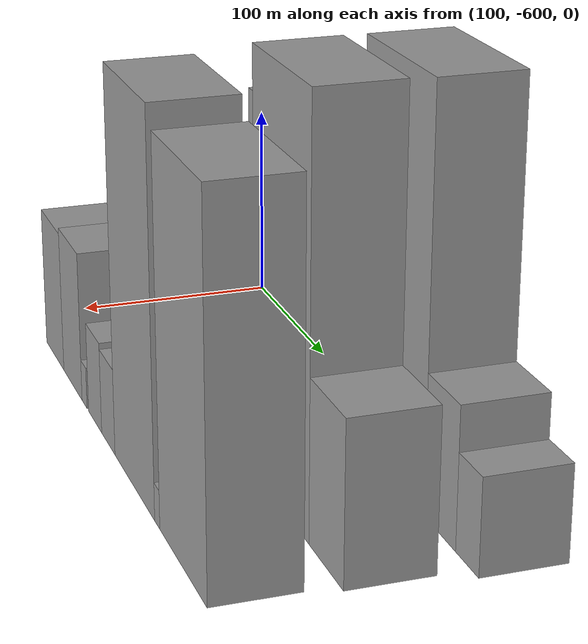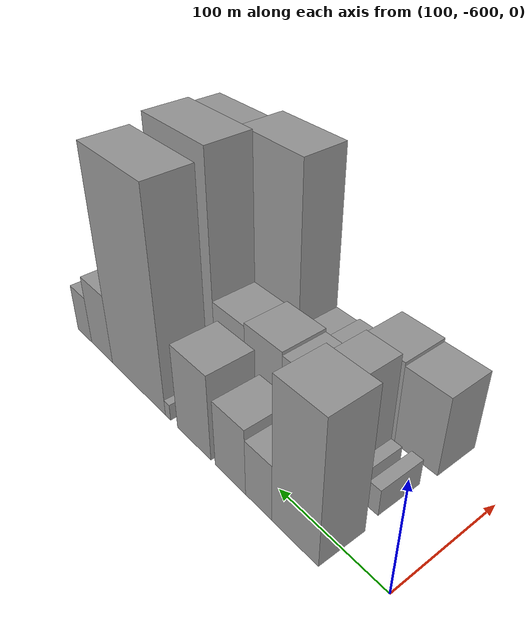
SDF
<sdf version="1.6">
 <world name="default">
  <model name="building_1">
   <static>1</static>
   <pose>100.0000 -538.0653 0 0.000000 0.000000 0.000000</pose>
   <link name="link">
    <pose>0 0 63.00 0 0 0</pose>
    <collision name="collision"><geometry><box><size>40.0000 43.8694 126.0000</size></box></geometry></collision>
    <visual name="visual">
     <cast_shadows>0</cast_shadows>
     <geometry><box><size>40.0000 43.8694 126.0000</size></box></geometry>
     <material>
      <script>
       <uri>model://grey_wall/materials/scripts</uri>
       <uri>model://grey_wall/materials/textures</uri>
       <name>vrc/grey_wall</name>
      </script>
     </material>
    </visual>
   </link>
  </model>
  <model name="building_2">
   <static>1</static>
   <pose>100.0000 -502.6067 0 0.000000 0.000000 0.000000</pose>
   <link name="link">
    <pose>0 0 25.50 0 0 0</pose>
    <collision name="collision"><geometry><box><size>40.0000 27.0477 51.0000</size></box></geometry></collision>
    <visual name="visual">
     <cast_shadows>0</cast_shadows>
     <geometry><box><size>40.0000 27.0477 51.0000</size></box></geometry>
     <material>
      <script>
       <uri>model://grey_wall/materials/scripts</uri>
       <uri>model://grey_wall/materials/textures</uri>
       <name>vrc/grey_wall</name>
      </script>
     </material>
    </visual>
   </link>
  </model>
  <model name="building_3">
   <static>1</static>
   <pose>100.0000 -472.1858 0 0.000000 0.000000 0.000000</pose>
   <link name="link">
    <pose>0 0 30.00 0 0 0</pose>
    <collision name="collision"><geometry><box><size>40.0000 33.7942 60.0000</size></box></geometry></collision>
    <visual name="visual">
     <cast_shadows>0</cast_shadows>
     <geometry><box><size>40.0000 33.7942 60.0000</size></box></geometry>
     <material>
      <script>
       <uri>model://grey_wall/materials/scripts</uri>
       <uri>model://grey_wall/materials/textures</uri>
       <name>vrc/grey_wall</name>
      </script>
     </material>
    </visual>
   </link>
  </model>
  <model name="building_4">
   <static>1</static>
   <pose>100.0000 -429.7920 0 0.000000 0.000000 0.000000</pose>
   <link name="link">
    <pose>0 0 39.00 0 0 0</pose>
    <collision name="collision"><geometry><box><size>40.0000 40.9933 78.0000</size></box></geometry></collision>
    <visual name="visual">
     <cast_shadows>0</cast_shadows>
     <geometry><box><size>40.0000 40.9933 78.0000</size></box></geometry>
     <material>
      <script>
       <uri>model://grey_wall/materials/scripts</uri>
       <uri>model://grey_wall/materials/textures</uri>
       <name>vrc/grey_wall</name>
      </script>
     </material>
    </visual>
   </link>
  </model>
  <model name="building_5">
   <static>1</static>
   <pose>100.0000 -396.8472 0 0.000000 0.000000 0.000000</pose>
   <link name="link">
    <pose>0 0 7.50 0 0 0</pose>
    <collision name="collision"><geometry><box><size>40.0000 6.8963 15.0000</size></box></geometry></collision>
    <visual name="visual">
     <cast_shadows>0</cast_shadows>
     <geometry><box><size>40.0000 6.8963 15.0000</size></box></geometry>
     <material>
      <script>
       <uri>model://grey_wall/materials/scripts</uri>
       <uri>model://grey_wall/materials/textures</uri>
       <name>vrc/grey_wall</name>
      </script>
     </material>
    </visual>
   </link>
  </model>
  <model name="building_6">
   <static>1</static>
   <pose>100.0000 -355.0737 0 0.000000 0.000000 0.000000</pose>
   <link name="link">
    <pose>0 0 96.00 0 0 0</pose>
    <collision name="collision"><geometry><box><size>40.0000 76.6506 192.0000</size></box></geometry></collision>
    <visual name="visual">
     <cast_shadows>0</cast_shadows>
     <geometry><box><size>40.0000 76.6506 192.0000</size></box></geometry>
     <material>
      <script>
       <uri>model://grey_wall/materials/scripts</uri>
       <uri>model://grey_wall/materials/textures</uri>
       <name>vrc/grey_wall</name>
      </script>
     </material>
    </visual>
   </link>
  </model>
  <model name="building_7">
   <static>1</static>
   <pose>100.0000 -299.8368 0 0.000000 0.000000 0.000000</pose>
   <link name="link">
    <pose>0 0 33.00 0 0 0</pose>
    <collision name="collision"><geometry><box><size>40.0000 33.8232 66.0000</size></box></geometry></collision>
    <visual name="visual">
     <cast_shadows>0</cast_shadows>
     <geometry><box><size>40.0000 33.8232 66.0000</size></box></geometry>
     <material>
      <script>
       <uri>model://grey_wall/materials/scripts</uri>
       <uri>model://grey_wall/materials/textures</uri>
       <name>vrc/grey_wall</name>
      </script>
     </material>
    </visual>
   </link>
  </model>
  <model name="building_8">
   <static>1</static>
   <pose>100.0000 -271.1607 0 0.000000 0.000000 0.000000</pose>
   <link name="link">
    <pose>0 0 22.50 0 0 0</pose>
    <collision name="collision"><geometry><box><size>40.0000 23.5292 45.0000</size></box></geometry></collision>
    <visual name="visual">
     <cast_shadows>0</cast_shadows>
     <geometry><box><size>40.0000 23.5292 45.0000</size></box></geometry>
     <material>
      <script>
       <uri>model://grey_wall/materials/scripts</uri>
       <uri>model://grey_wall/materials/textures</uri>
       <name>vrc/grey_wall</name>
      </script>
     </material>
    </visual>
   </link>
  </model>
  <model name="building_35">
   <static>1</static>
   <pose>155.0000 -551.8462 0 0.000000 0.000000 0.000000</pose>
   <link name="link">
    <pose>0 0 12.00 0 0 0</pose>
    <collision name="collision"><geometry><box><size>40.0000 10.3077 24.0000</size></box></geometry></collision>
    <visual name="visual">
     <cast_shadows>0</cast_shadows>
     <geometry><box><size>40.0000 10.3077 24.0000</size></box></geometry>
     <material>
      <script>
       <uri>model://grey_wall/materials/scripts</uri>
       <uri>model://grey_wall/materials/textures</uri>
       <name>vrc/grey_wall</name>
      </script>
     </material>
    </visual>
   </link>
  </model>
  <model name="building_36">
   <static>1</static>
   <pose>155.0000 -533.7360 0 0.000000 0.000000 0.000000</pose>
   <link name="link">
    <pose>0 0 10.50 0 0 0</pose>
    <collision name="collision"><geometry><box><size>40.0000 9.9126 21.0000</size></box></geometry></collision>
    <visual name="visual">
     <cast_shadows>0</cast_shadows>
     <geometry><box><size>40.0000 9.9126 21.0000</size></box></geometry>
     <material>
      <script>
       <uri>model://grey_wall/materials/scripts</uri>
       <uri>model://grey_wall/materials/textures</uri>
       <name>vrc/grey_wall</name>
      </script>
     </material>
    </visual>
   </link>
  </model>
  <model name="building_37">
   <static>1</static>
   <pose>155.0000 -513.0303 0 0.000000 0.000000 0.000000</pose>
   <link name="link">
    <pose>0 0 48.00 0 0 0</pose>
    <collision name="collision"><geometry><box><size>40.0000 31.4988 96.0000</size></box></geometry></collision>
    <visual name="visual">
     <cast_shadows>0</cast_shadows>
     <geometry><box><size>40.0000 31.4988 96.0000</size></box></geometry>
     <material>
      <script>
       <uri>model://grey_wall/materials/scripts</uri>
       <uri>model://grey_wall/materials/textures</uri>
       <name>vrc/grey_wall</name>
      </script>
     </material>
    </visual>
   </link>
  </model>
  <model name="building_38">
   <static>1</static>
   <pose>155.0000 -479.1064 0 0.000000 0.000000 0.000000</pose>
   <link name="link">
    <pose>0 0 36.00 0 0 0</pose>
    <collision name="collision"><geometry><box><size>40.0000 36.3490 72.0000</size></box></geometry></collision>
    <visual name="visual">
     <cast_shadows>0</cast_shadows>
     <geometry><box><size>40.0000 36.3490 72.0000</size></box></geometry>
     <material>
      <script>
       <uri>model://grey_wall/materials/scripts</uri>
       <uri>model://grey_wall/materials/textures</uri>
       <name>vrc/grey_wall</name>
      </script>
     </material>
    </visual>
   </link>
  </model>
  <model name="building_39">
   <static>1</static>
   <pose>155.0000 -440.3385 0 0.000000 0.000000 0.000000</pose>
   <link name="link">
    <pose>0 0 37.50 0 0 0</pose>
    <collision name="collision"><geometry><box><size>40.0000 41.1868 75.0000</size></box></geometry></collision>
    <visual name="visual">
     <cast_shadows>0</cast_shadows>
     <geometry><box><size>40.0000 41.1868 75.0000</size></box></geometry>
     <material>
      <script>
       <uri>model://grey_wall/materials/scripts</uri>
       <uri>model://grey_wall/materials/textures</uri>
       <name>vrc/grey_wall</name>
      </script>
     </material>
    </visual>
   </link>
  </model>
  <model name="building_40">
   <static>1</static>
   <pose>155.0000 -400.9621 0 0.000000 0.000000 0.000000</pose>
   <link name="link">
    <pose>0 0 36.00 0 0 0</pose>
    <collision name="collision"><geometry><box><size>40.0000 37.5661 72.0000</size></box></geometry></collision>
    <visual name="visual">
     <cast_shadows>0</cast_shadows>
     <geometry><box><size>40.0000 37.5661 72.0000</size></box></geometry>
     <material>
      <script>
       <uri>model://grey_wall/materials/scripts</uri>
       <uri>model://grey_wall/materials/textures</uri>
       <name>vrc/grey_wall</name>
      </script>
     </material>
    </visual>
   </link>
  </model>
  <model name="building_41">
   <static>1</static>
   <pose>155.0000 -345.1569 0 0.000000 0.000000 0.000000</pose>
   <link name="link">
    <pose>0 0 97.50 0 0 0</pose>
    <collision name="collision"><geometry><box><size>40.0000 74.0444 195.0000</size></box></geometry></collision>
    <visual name="visual">
     <cast_shadows>0</cast_shadows>
     <geometry><box><size>40.0000 74.0444 195.0000</size></box></geometry>
     <material>
      <script>
       <uri>model://grey_wall/materials/scripts</uri>
       <uri>model://grey_wall/materials/textures</uri>
       <name>vrc/grey_wall</name>
      </script>
     </material>
    </visual>
   </link>
  </model>
  <model name="building_42">
   <static>1</static>
   <pose>155.0000 -287.4145 0 0.000000 0.000000 0.000000</pose>
   <link name="link">
    <pose>0 0 37.50 0 0 0</pose>
    <collision name="collision"><geometry><box><size>40.0000 41.4403 75.0000</size></box></geometry></collision>
    <visual name="visual">
     <cast_shadows>0</cast_shadows>
     <geometry><box><size>40.0000 41.4403 75.0000</size></box></geometry>
     <material>
      <script>
       <uri>model://grey_wall/materials/scripts</uri>
       <uri>model://grey_wall/materials/textures</uri>
       <name>vrc/grey_wall</name>
      </script>
     </material>
    </visual>
   </link>
  </model>
  <model name="building_66">
   <static>1</static>
   <pose>210.0000 -540.2612 0 0.000000 0.000000 0.000000</pose>
   <link name="link">
    <pose>0 0 36.00 0 0 0</pose>
    <collision name="collision"><geometry><box><size>40.0000 39.4776 72.0000</size></box></geometry></collision>
    <visual name="visual">
     <cast_shadows>0</cast_shadows>
     <geometry><box><size>40.0000 39.4776 72.0000</size></box></geometry>
     <material>
      <script>
       <uri>model://grey_wall/materials/scripts</uri>
       <uri>model://grey_wall/materials/textures</uri>
       <name>vrc/grey_wall</name>
      </script>
     </material>
    </visual>
   </link>
  </model>
  <model name="building_67">
   <static>1</static>
   <pose>210.0000 -500.9302 0 0.000000 0.000000 0.000000</pose>
   <link name="link">
    <pose>0 0 37.50 0 0 0</pose>
    <collision name="collision"><geometry><box><size>40.0000 39.1845 75.0000</size></box></geometry></collision>
    <visual name="visual">
     <cast_shadows>0</cast_shadows>
     <geometry><box><size>40.0000 39.1845 75.0000</size></box></geometry>
     <material>
      <script>
       <uri>model://grey_wall/materials/scripts</uri>
       <uri>model://grey_wall/materials/textures</uri>
       <name>vrc/grey_wall</name>
      </script>
     </material>
    </visual>
   </link>
  </model>
  <model name="building_68">
   <static>1</static>
   <pose>210.0000 -476.1418 0 0.000000 0.000000 0.000000</pose>
   <link name="link">
    <pose>0 0 10.50 0 0 0</pose>
    <collision name="collision"><geometry><box><size>40.0000 10.3924 21.0000</size></box></geometry></collision>
    <visual name="visual">
     <cast_shadows>0</cast_shadows>
     <geometry><box><size>40.0000 10.3924 21.0000</size></box></geometry>
     <material>
      <script>
       <uri>model://grey_wall/materials/scripts</uri>
       <uri>model://grey_wall/materials/textures</uri>
       <name>vrc/grey_wall</name>
      </script>
     </material>
    </visual>
   </link>
  </model>
  <model name="building_69">
   <static>1</static>
   <pose>210.0000 -454.9557 0 0.000000 0.000000 0.000000</pose>
   <link name="link">
    <pose>0 0 22.50 0 0 0</pose>
    <collision name="collision"><geometry><box><size>40.0000 25.9798 45.0000</size></box></geometry></collision>
    <visual name="visual">
     <cast_shadows>0</cast_shadows>
     <geometry><box><size>40.0000 25.9798 45.0000</size></box></geometry>
     <material>
      <script>
       <uri>model://grey_wall/materials/scripts</uri>
       <uri>model://grey_wall/materials/textures</uri>
       <name>vrc/grey_wall</name>
      </script>
     </material>
    </visual>
   </link>
  </model>
  <model name="building_70">
   <static>1</static>
   <pose>210.0000 -429.4391 0 0.000000 0.000000 0.000000</pose>
   <link name="link">
    <pose>0 0 21.00 0 0 0</pose>
    <collision name="collision"><geometry><box><size>40.0000 25.0533 42.0000</size></box></geometry></collision>
    <visual name="visual">
     <cast_shadows>0</cast_shadows>
     <geometry><box><size>40.0000 25.0533 42.0000</size></box></geometry>
     <material>
      <script>
       <uri>model://grey_wall/materials/scripts</uri>
       <uri>model://grey_wall/materials/textures</uri>
       <name>vrc/grey_wall</name>
      </script>
     </material>
    </visual>
   </link>
  </model>
  <model name="building_71">
   <static>1</static>
   <pose>210.0000 -382.7903 0 0.000000 0.000000 0.000000</pose>
   <link name="link">
    <pose>0 0 91.50 0 0 0</pose>
    <collision name="collision"><geometry><box><size>40.0000 68.2444 183.0000</size></box></geometry></collision>
    <visual name="visual">
     <cast_shadows>0</cast_shadows>
     <geometry><box><size>40.0000 68.2444 183.0000</size></box></geometry>
     <material>
      <script>
       <uri>model://grey_wall/materials/scripts</uri>
       <uri>model://grey_wall/materials/textures</uri>
       <name>vrc/grey_wall</name>
      </script>
     </material>
    </visual>
   </link>
  </model>
  <model name="building_72">
   <static>1</static>
   <pose>210.0000 -344.5734 0 0.000000 0.000000 0.000000</pose>
   <link name="link">
    <pose>0 0 9.00 0 0 0</pose>
    <collision name="collision"><geometry><box><size>40.0000 8.1895 18.0000</size></box></geometry></collision>
    <visual name="visual">
     <cast_shadows>0</cast_shadows>
     <geometry><box><size>40.0000 8.1895 18.0000</size></box></geometry>
     <material>
      <script>
       <uri>model://grey_wall/materials/scripts</uri>
       <uri>model://grey_wall/materials/textures</uri>
       <name>vrc/grey_wall</name>
      </script>
     </material>
    </visual>
   </link>
  </model>
  <model name="building_73">
   <static>1</static>
   <pose>210.0000 -305.7574 0 0.000000 0.000000 0.000000</pose>
   <link name="link">
    <pose>0 0 87.00 0 0 0</pose>
    <collision name="collision"><geometry><box><size>40.0000 69.4425 174.0000</size></box></geometry></collision>
    <visual name="visual">
     <cast_shadows>0</cast_shadows>
     <geometry><box><size>40.0000 69.4425 174.0000</size></box></geometry>
     <material>
      <script>
       <uri>model://grey_wall/materials/scripts</uri>
       <uri>model://grey_wall/materials/textures</uri>
       <name>vrc/grey_wall</name>
      </script>
     </material>
    </visual>
   </link>
  </model>
 </world>
</sdf>
